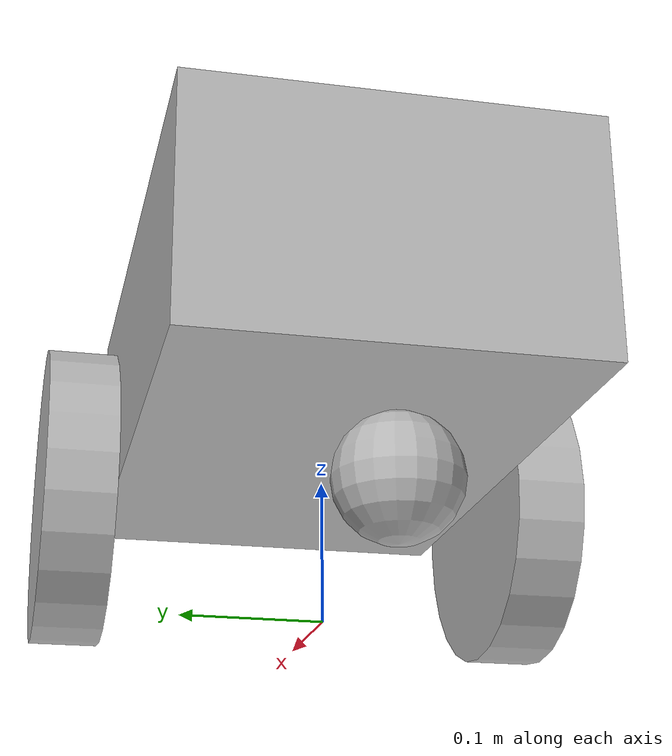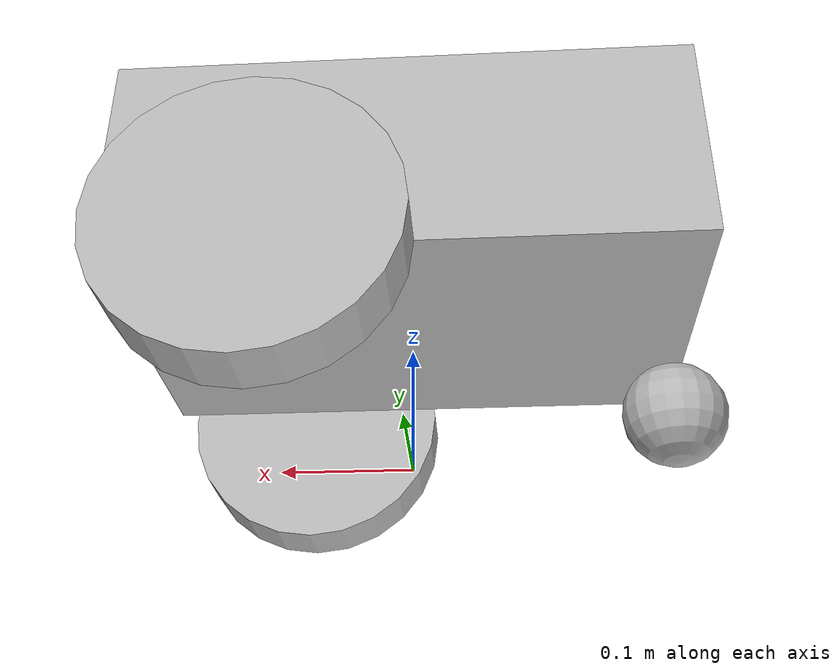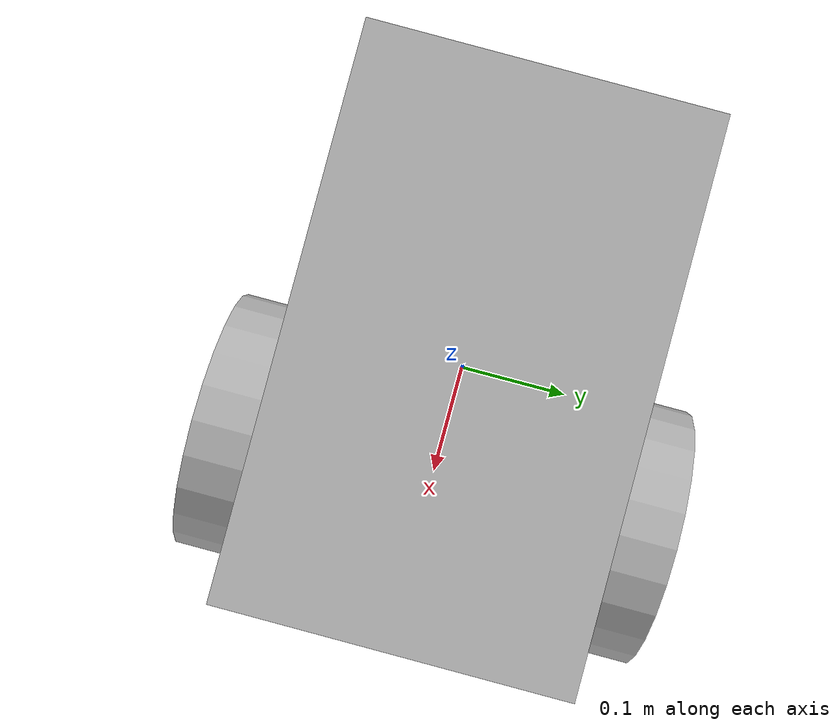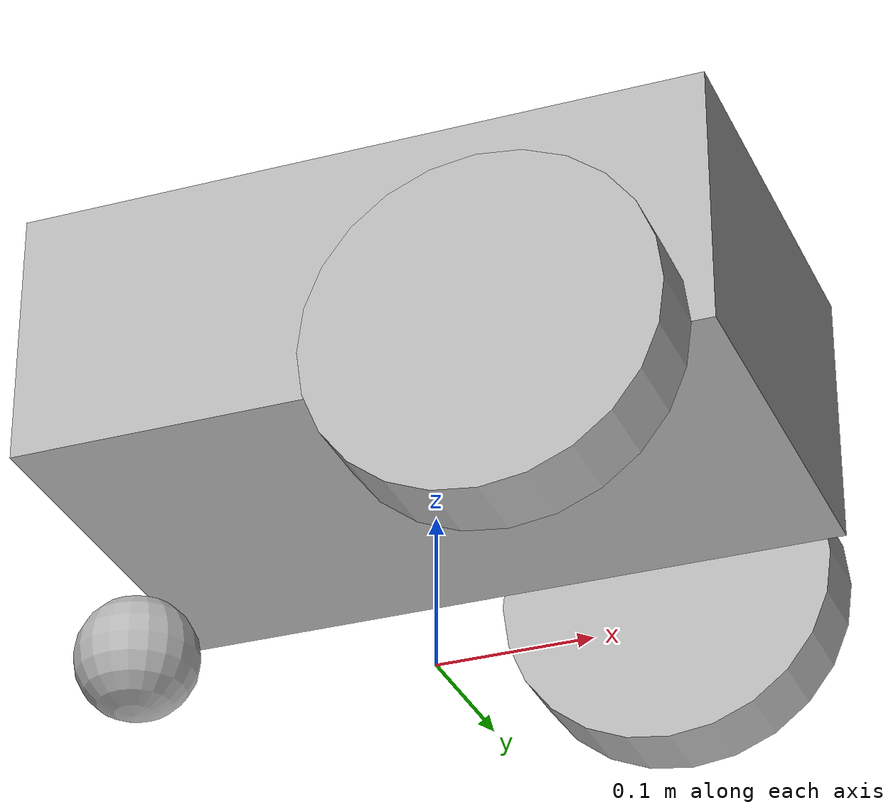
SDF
<?xml version='1.0'?>
<sdf version='1.4'>
<model name='pioneer2dx'>
      <link name='chassis'>
        <pose>0 0 0.16 0 -0 0</pose>
        <inertial>
          <mass>5.67</mass>
          <inertia>
            <ixx>0.07</ixx>
            <iyy>0.08</iyy>
            <izz>0.1</izz>
            <ixy>0</ixy>
            <ixz>0</ixz>
            <iyz>0</iyz>
          </inertia>
        </inertial>
        <collision name='collision'>
          <geometry>
            <box>
              <size>0.445 0.277 0.17</size>
            </box>
          </geometry>
          <max_contacts>10</max_contacts>
          <surface>
            <bounce/>
            <friction>
              <ode/>
            </friction>
            <contact>
              <ode/>
            </contact>
          </surface>
        </collision>
        <collision name='castor_collision'>
          <pose>-0.2 0 -0.12 0 -0 0</pose>
          <geometry>
            <sphere>
              <radius>0.04</radius>
            </sphere>
          </geometry>
          <surface>
            <friction>
              <ode>
                <mu>0</mu>
                <mu2>0</mu2>
                <slip1>1</slip1>
                <slip2>1</slip2>
              </ode>
            </friction>
            <bounce/>
            <contact>
              <ode/>
            </contact>
          </surface>
          <max_contacts>10</max_contacts>
        </collision>
        <visual name='visual'>
          <pose>0 0 0.04 0 -0 0</pose>
          <geometry>
            <box>
              <size>0.445 0.277 0.17</size>
            </box>
          </geometry>
        </visual>
        <visual name='castor_visual'>
          <pose>-0.2 0 -0.12 0 -0 0</pose>
          <geometry>
            <sphere>
              <radius>0.04</radius>
            </sphere>
          </geometry>

        </visual>
        <velocity_decay>
          <linear>0</linear>
          <angular>0</angular>
        </velocity_decay>
        <self_collide>0</self_collide>
        <kinematic>0</kinematic>
        <gravity>1</gravity>
      </link>
      <link name='right_wheel'>
        <pose>0.1 -0.17 0.11 0 1.5707 1.5707</pose>
        <inertial>
          <mass>1.5</mass>
          <inertia>
            <ixx>0.0051</ixx>
            <iyy>0.0051</iyy>
            <izz>0.009</izz>
            <ixy>0</ixy>
            <ixz>0</ixz>
            <iyz>0</iyz>
          </inertia>
        </inertial>
        <collision name='collision'>
          <geometry>
            <cylinder>
              <radius>0.11</radius>
              <length>0.05</length>
            </cylinder>
          </geometry>
          <surface>
            <friction>
              <ode>
                <mu>100000</mu>
                <mu2>100000</mu2>
                <slip1>0</slip1>
                <slip2>0</slip2>
              </ode>
            </friction>
            <bounce/>
            <contact>
              <ode/>
            </contact>
          </surface>
          <max_contacts>10</max_contacts>
        </collision>
        <visual name='visual'>
          <geometry>
            <cylinder>
              <radius>0.11</radius>
              <length>0.05</length>
            </cylinder>
          </geometry>

        </visual>
        <velocity_decay>
          <linear>0</linear>
          <angular>0</angular>
        </velocity_decay>
        <self_collide>0</self_collide>
        <kinematic>0</kinematic>
        <gravity>1</gravity>
      </link>
      <link name='left_wheel'>
        <pose>0.1 0.17 0.11 0 1.5707 1.5707</pose>
        <inertial>
          <mass>1.5</mass>
          <inertia>
            <ixx>0.0051</ixx>
            <iyy>0.0051</iyy>
            <izz>0.009</izz>
            <ixy>0</ixy>
            <ixz>0</ixz>
            <iyz>0</iyz>
          </inertia>
        </inertial>
        <collision name='collision'>
          <geometry>
            <cylinder>
              <radius>0.11</radius>
              <length>0.05</length>
            </cylinder>
          </geometry>
          <surface>
            <friction>
              <ode>
                <mu>100000</mu>
                <mu2>100000</mu2>
                <slip1>0</slip1>
                <slip2>0</slip2>
              </ode>
            </friction>
            <bounce/>
            <contact>
              <ode/>
            </contact>
          </surface>
          <max_contacts>10</max_contacts>
        </collision>
        <visual name='visual'>
          <geometry>
            <cylinder>
              <radius>0.11</radius>
              <length>0.05</length>
            </cylinder>
          </geometry>

        </visual>
        <velocity_decay>
          <linear>0</linear>
          <angular>0</angular>
        </velocity_decay>
        <self_collide>0</self_collide>
        <kinematic>0</kinematic>
        <gravity>1</gravity>
      </link>
      <joint name='left_wheel_hinge' type='revolute'>
        <pose>0 0 -0.03 0 -0 0</pose>
        <child>left_wheel</child>
        <parent>chassis</parent>
        <axis>
          <xyz>0 1 0</xyz>
          <limit>
            <lower>-1e+16</lower>
            <upper>1e+16</upper>
          </limit>
        </axis>
      </joint>
      <joint name='right_wheel_hinge' type='revolute'>
        <pose>0 0 0.03 0 -0 0</pose>
        <child>right_wheel</child>
        <parent>chassis</parent>
        <axis>
          <xyz>0 1 0</xyz>
          <limit>
            <lower>-1e+16</lower>
            <upper>1e+16</upper>
          </limit>
        </axis>
      </joint>
      <!-- Replaced Gazebo's differential drive plugin with the
           ROS-friendly variant -->
      <plugin name='differential_drive_controller'
              filename='libgazebo_ros_diff_drive.so'>
        <alwaysOn>true</alwaysOn>
        <updateRate>100</updateRate>
        <leftJoint>left_wheel_hinge</leftJoint>
        <rightJoint>right_wheel_hinge</rightJoint>
        <wheelSeparation>0.39</wheelSeparation>
        <wheelDiameter>0.15</wheelDiameter>
        <torque>5</torque>
        <commandTopic>cmd_vel</commandTopic>
        <odometryTopic>odom</odometryTopic>
        <odometryFrame>odom</odometryFrame>
        <robotBaseFrame>chassis</robotBaseFrame>
      </plugin>

      <pose>0 0 0 0 -0 0</pose>
      <static>0</static>
    </model>
    </sdf>
